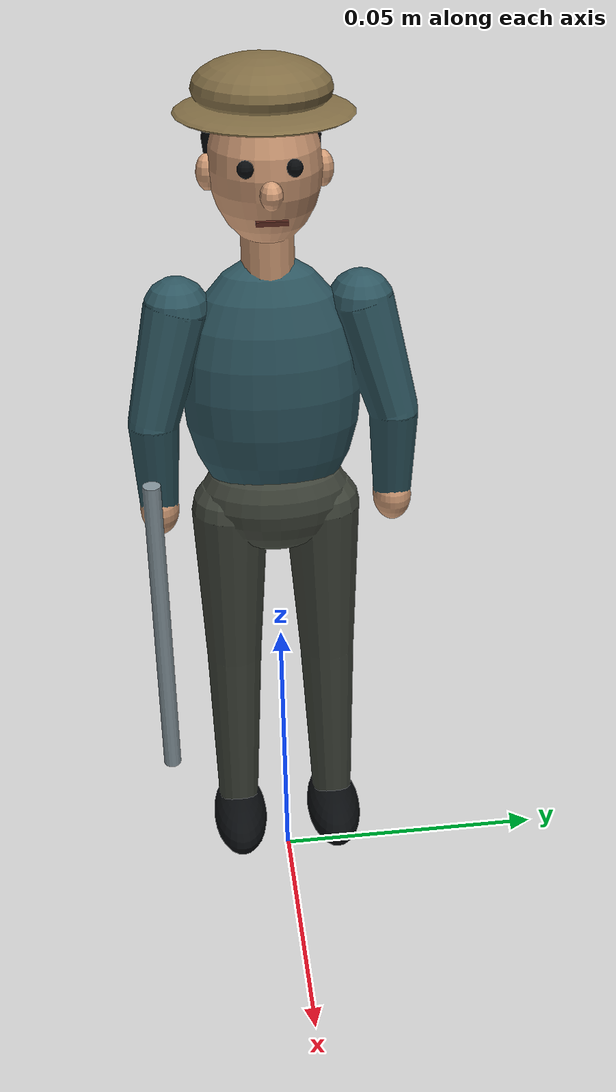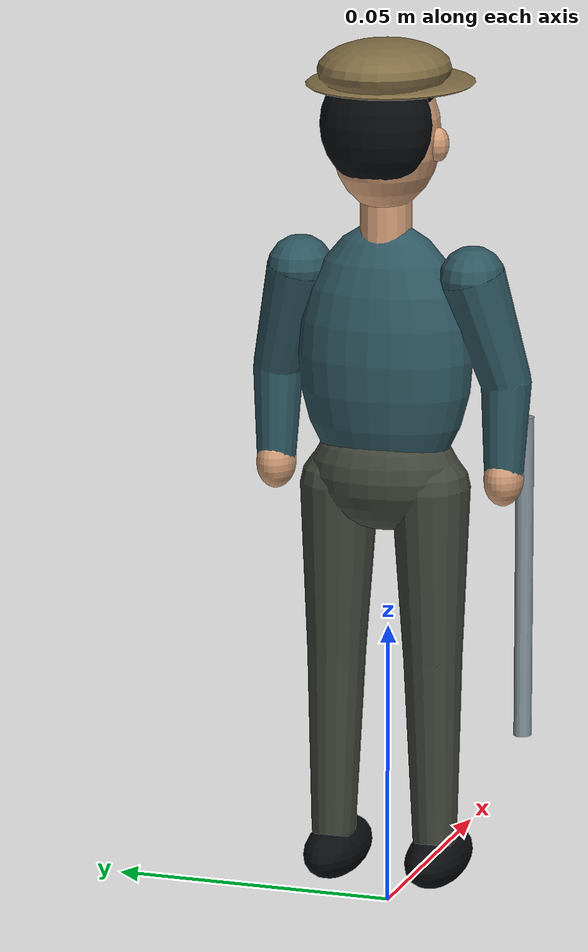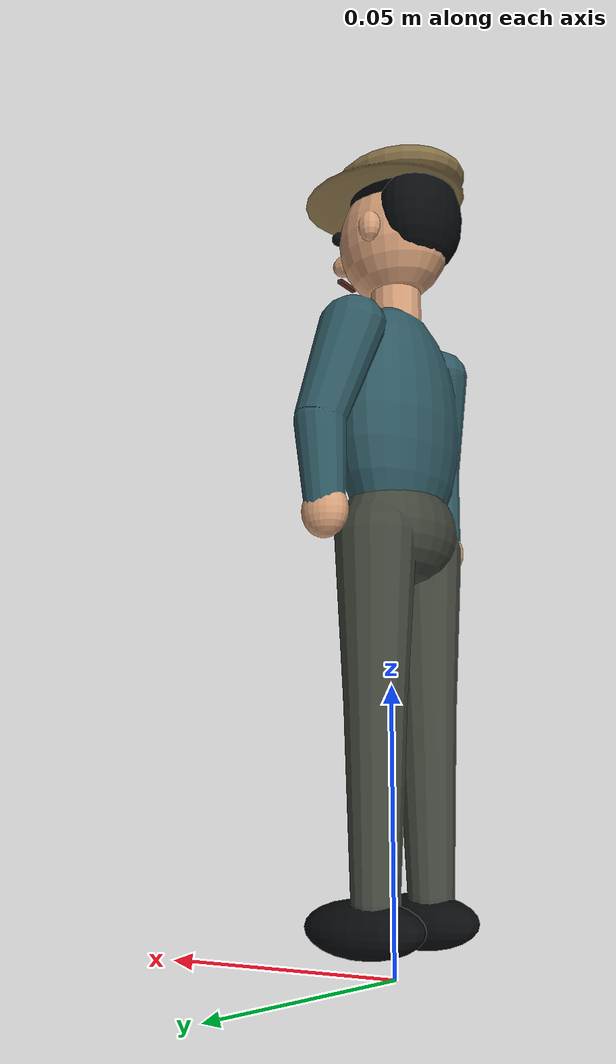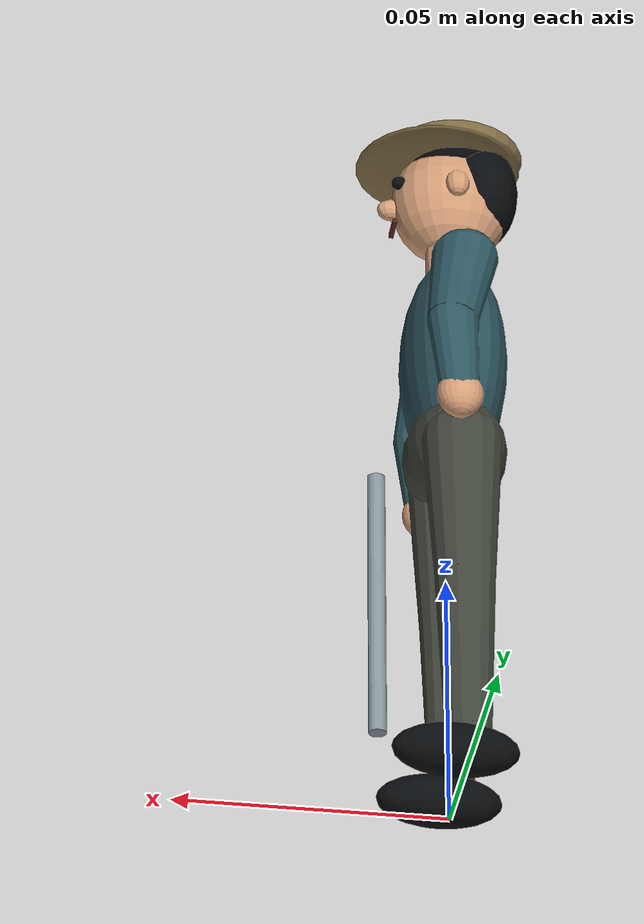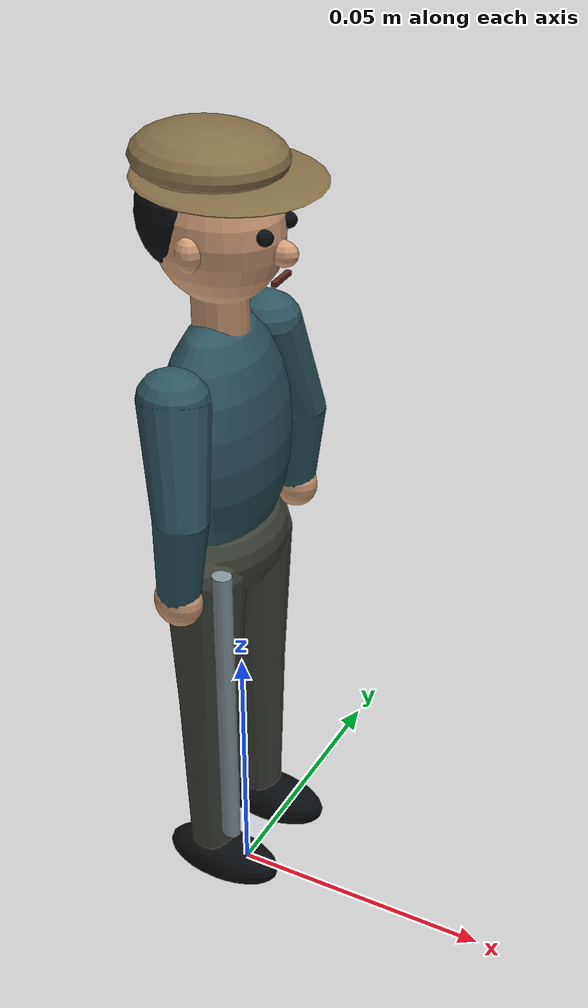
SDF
<sdf version='1.6'><model name='sq_people_3d'><static>true</static><pose>0.000000 0.000000 0.004000 0.00000000 0 0.00000000</pose><link name='body'><visual name='body_visual'><geometry><mesh><uri>model://sq_people_3d/meshes/person_01.dae</uri></mesh></geometry></visual><collision name='body_collision'><pose>0 0 0.075000 0 0 0</pose><geometry><box><size>0.033000 0.050000 0.150000</size></box></geometry></collision></link></model></sdf>
